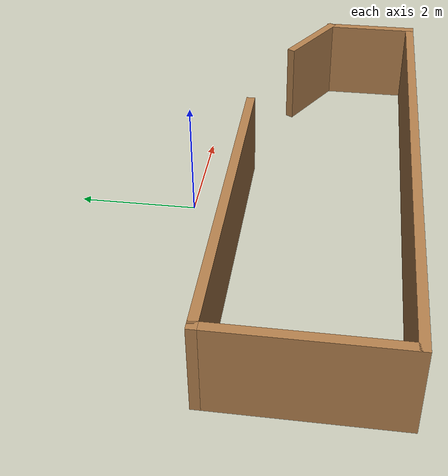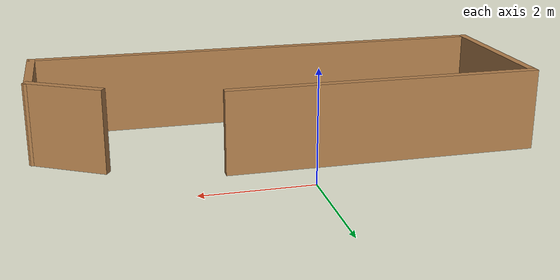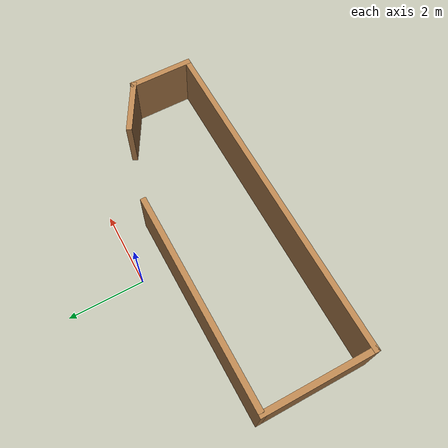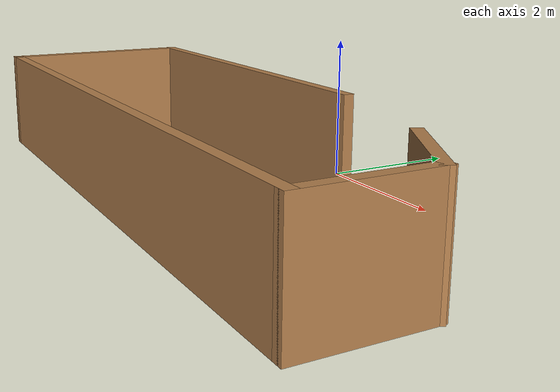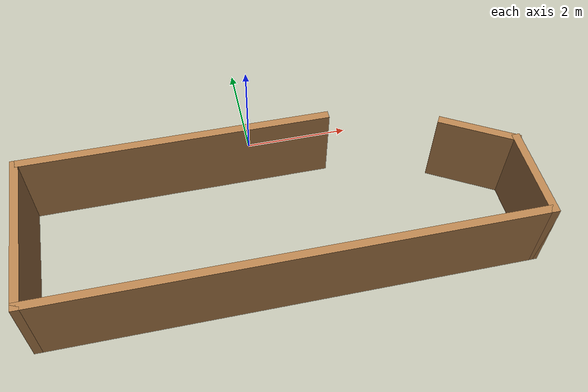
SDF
<?xml version='1.0'?>
<sdf version='1.7'>
  <model name='outer_wall'>
    <pose>0.148752 -1.8725 0 0 -0 0</pose>
    <link name='Wall_2'>
      <collision name='Wall_2_Collision'>
        <geometry>
          <box>
            <size>5.75 0.15 1.5</size>
          </box>
        </geometry>
        <pose>0 0 0.75 0 -0 0</pose>
      </collision>
      <visual name='Wall_2_Visual'>
        <pose>0 0 0.75 0 -0 0</pose>
        <geometry>
          <box>
            <size>5.75 0.15 1.5</size>
          </box>
        </geometry>
        <material>
          <script>
            <uri>file://media/materials/scripts/gazebo.material</uri>
            <name>Gazebo/Wood</name>
          </script>
          <ambient>1 1 1 1</ambient>
        </material>
        <meta>
          <layer>0</layer>
        </meta>
      </visual>
      <pose>-1.63875 1.0525 0 0 -0 3.14159</pose>
    </link>
    <link name='Wall_3'>
      <collision name='Wall_3_Collision'>
        <geometry>
          <box>
            <size>3 0.15 1.5</size>
          </box>
        </geometry>
        <pose>0 0 0.75 0 -0 0</pose>
      </collision>
      <visual name='Wall_3_Visual'>
        <pose>0 0 0.75 0 -0 0</pose>
        <geometry>
          <box>
            <size>3 0.15 1.5</size>
          </box>
        </geometry>
        <material>
          <script>
            <uri>file://media/materials/scripts/gazebo.material</uri>
            <name>Gazebo/Wood</name>
          </script>
          <ambient>1 1 1 1</ambient>
        </material>
        <meta>
          <layer>0</layer>
        </meta>
      </visual>
      <pose>-4.43875 -0.3725 0 0 -0 -1.5708</pose>
    </link>
    <link name='Wall_4'>
      <collision name='Wall_4_Collision'>
        <geometry>
          <box>
            <size>9 0.15 1.5</size>
          </box>
        </geometry>
        <pose>0 0 0.75 0 -0 0</pose>
      </collision>
      <visual name='Wall_4_Visual'>
        <pose>0 0 0.75 0 -0 0</pose>
        <geometry>
          <box>
            <size>9 0.15 1.5</size>
          </box>
        </geometry>
        <material>
          <script>
            <uri>file://media/materials/scripts/gazebo.material</uri>
            <name>Gazebo/Wood</name>
          </script>
          <ambient>1 1 1 1</ambient>
        </material>
        <meta>
          <layer>0</layer>
        </meta>
      </visual>
      <pose>-0.013752 -1.7975 0 0 -0 0</pose>
    </link>
    <link name='Wall_5'>
      <collision name='Wall_5_Collision'>
        <geometry>
          <box>
            <size>1.75 0.15 1.5</size>
          </box>
        </geometry>
        <pose>0 0 0.75 0 -0 0</pose>
      </collision>
      <visual name='Wall_5_Visual'>
        <pose>0 0 0.75 0 -0 0</pose>
        <geometry>
          <box>
            <size>1.75 0.15 1.5</size>
          </box>
        </geometry>
        <material>
          <script>
            <uri>file://media/materials/scripts/gazebo.material</uri>
            <name>Gazebo/Wood</name>
          </script>
          <ambient>1 1 1 1</ambient>
        </material>
        <meta>
          <layer>0</layer>
        </meta>
      </visual>
      <pose>4.41125 -0.9975 0 0 -0 1.5708</pose>
    </link>
    <link name='Wall_6'>
      <collision name='Wall_6_Collision'>
        <geometry>
          <box>
            <size>1.5 0.15 1.5</size>
          </box>
        </geometry>
        <pose>0 0 0.75 0 -0 0</pose>
      </collision>
      <visual name='Wall_6_Visual'>
        <pose>0 0 0.75 0 -0 0</pose>
        <geometry>
          <box>
            <size>1.5 0.15 1.5</size>
          </box>
        </geometry>
        <material>
          <script>
            <uri>file://media/materials/scripts/gazebo.material</uri>
            <name>Gazebo/Wood</name>
          </script>
          <ambient>1 1 1 1</ambient>
        </material>
        <meta>
          <layer>0</layer>
        </meta>
      </visual>
      <pose>3.82675 0.14 0 0 -0 2.61794</pose>
    </link>
    <static>1</static>
  </model>
</sdf>
